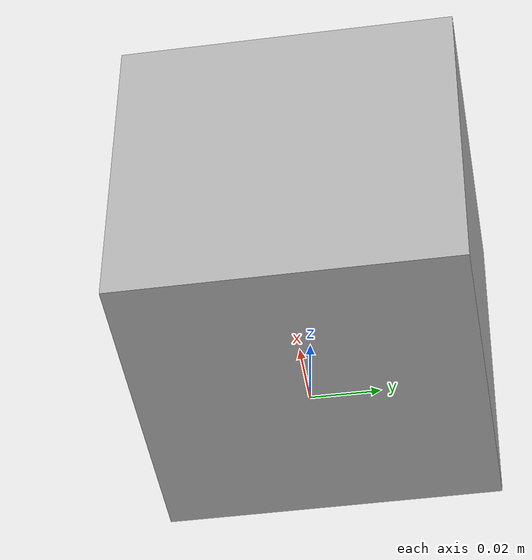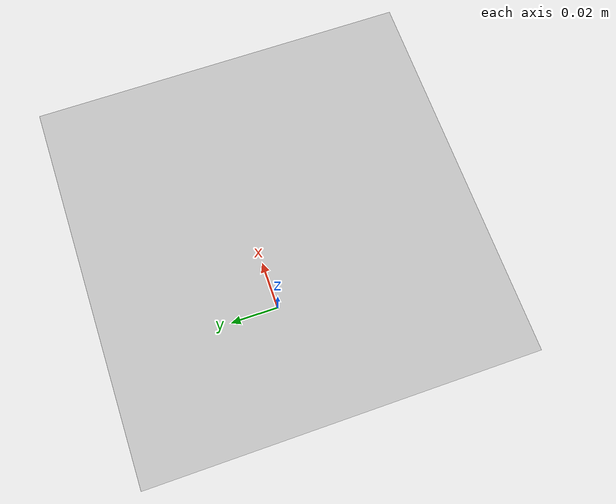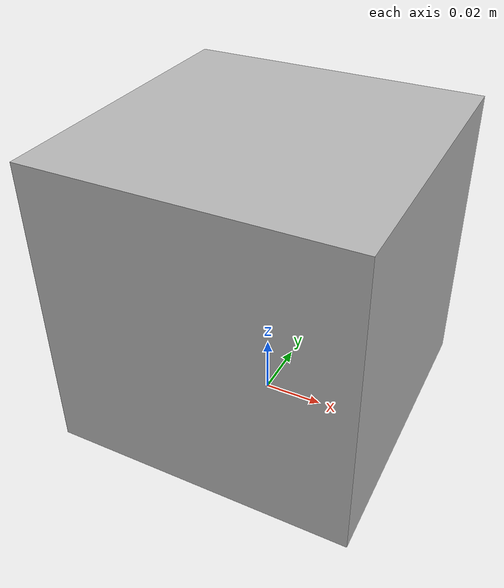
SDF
<?xml version='1.0'?>
<sdf version='1.6'>
  <model name='equipmentE'>
    <link name='link_E'>
      <inertial>
        <mass>0.05</mass>
        <inertia>
          <ixx>0.17</ixx>
          <ixy>0.17</ixy>
          <ixz>0.17</ixz>
          <iyy>0.17</iyy>
          <iyz>0.17</iyz>
          <izz>0.17</izz>
        </inertia>
      </inertial>
      <pose frame=''>0 0 0 0 -0 0</pose>
      <visual name='visual'>
        <pose frame=''>0 0 0 0 -0 0</pose>
        <geometry>
          <mesh>
            <uri>model://equipmentE/meshes/equipment_E.obj</uri>
            <scale>1 1 1</scale>
          </mesh>
        </geometry>
        <transparency>0</transparency>
        <cast_shadows>1</cast_shadows>
      </visual>
      <collision name='collision'>
        <laser_retro>0</laser_retro>
        <max_contacts>10</max_contacts>
        <pose frame=''>0 0 0.05 0 -0 0</pose>
        <geometry>
          <box>
            <size>0.1 0.1 0.1</size>
          </box>
        </geometry>
        <surface>
          <friction>
            <ode>
              <mu>1</mu>
              <mu2>1</mu2>
              <fdir1>0 0 0</fdir1>
              <slip1>0</slip1>
              <slip2>0</slip2>
            </ode>
            <torsional>
              <coefficient>1</coefficient>
              <patch_radius>1</patch_radius>
              <surface_radius>1</surface_radius>
              <use_patch_radius>1</use_patch_radius>
              <ode>
                <slip>0</slip>
              </ode>
            </torsional>
          </friction>
          <bounce>
            <restitution_coefficient>1</restitution_coefficient>
            <threshold>1e+06</threshold>
          </bounce>
          <contact>
            <collide_without_contact>0</collide_without_contact>
            <collide_without_contact_bitmask>1</collide_without_contact_bitmask>
            <collide_bitmask>1</collide_bitmask>
            <ode>
              <soft_cfm>0</soft_cfm>
              <soft_erp>0.2</soft_erp>
              <kp>1e+13</kp>
              <kd>1</kd>
              <max_vel>0.01</max_vel>
              <min_depth>0</min_depth>
            </ode>
            <bullet>
              <split_impulse>1</split_impulse>
              <split_impulse_penetration_threshold>-0.01</split_impulse_penetration_threshold>
              <soft_cfm>0</soft_cfm>
              <soft_erp>0.2</soft_erp>
              <kp>1e+13</kp>
              <kd>1</kd>
            </bullet>
          </contact>
        </surface>
      </collision>
    </link>
    <static>0</static>
    <allow_auto_disable>1</allow_auto_disable>
  </model>
</sdf>
